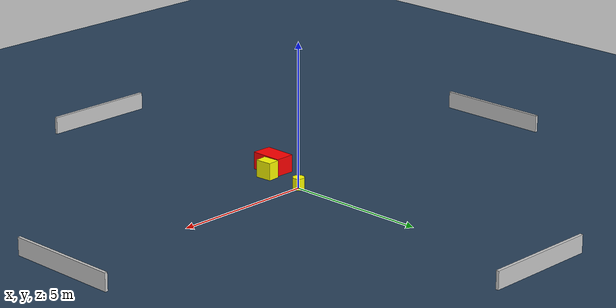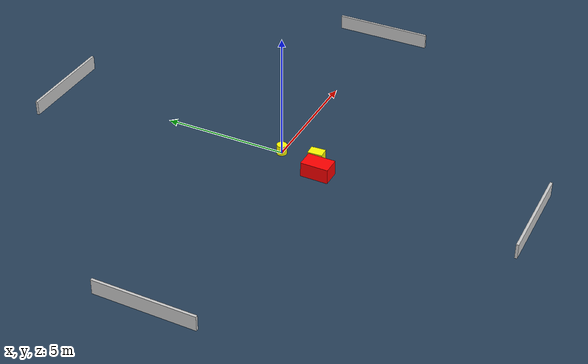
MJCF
<?xml version="1.0" ?>
<mujoco model="generated_environment">
  <option timestep="0.01" integrator="RK4" cone="elliptic"/>
  <default>
    <geom density="1"/>
  </default>
  <asset>
    <texture builtin="gradient" height="3072" name="skybox" rgb1="0.3 0.5 0.7" rgb2="0 0 0" type="skybox" width="512"/>
    <texture builtin="checker" height="300" name="groundplane" rgb1="0.2 0.3 0.4" rgb2="0.1 0.2 0.3" type="2d" width="300"/>
    <material name="groundplane" reflectance="0.2" texrepeat="5 5" texture="groundplane"/>
  </asset>
  <worldbody>
    <light dir="0 0 -1" directional="true" pos="0 0 1.5"/>
    <geom condim="3" friction="0.5 0.005 0.001" material="groundplane" name="floor" pos="0 0 0" size="0 0 0.05" type="plane"/>
    <body name="walls">
      <geom name="wall_1" condim="4" pos="-10.0 0.0 0.3" rgba="0.800000011920929 0.800000011920929 0.800000011920929 1.0" size="0.05 2.0 0.3" type="box"/>
      <geom name="wall_2" condim="4" pos="10.0 0.0 0.3" rgba="0.800000011920929 0.800000011920929 0.800000011920929 1.0" size="0.05 2.0 0.3" type="box"/>
      <geom name="wall_3" condim="4" pos="0.0 -10.0 0.3" rgba="0.800000011920929 0.800000011920929 0.800000011920929 1.0" size="2.0 0.05 0.3" type="box"/>
      <geom name="wall_4" condim="4" pos="0.0 10.0 0.3" rgba="0.800000011920929 0.800000011920929 0.800000011920929 1.0" size="2.0 0.05 0.3" type="box"/>
    </body>
    <body name="robot">
      <joint name="joint_x" type="slide" pos="0 0 0" axis="1 0 0"/>
      <joint name="joint_y" type="slide" pos="0 0 0" axis="0 1 0"/>
      <geom name="robot" type="cylinder" pos="0.0 0.0 0.2" size="0.2 0.2 0.0" mass="5.0" friction="1.0 0.005 0.0001" condim="4" rgba="1.0 1.0 0.0 1.0"/>
    </body>
    <body name="obstacle_1_movable">
      <geom name="obstacle_1_movable" condim="4" pos="-0.05370547077309323 -1.5007358399376762 0.3" euler="0 0 183.54250926334348" friction="0.0 0.005 0.001" rgba="1.0 1.0 0.0 1.0" size="0.20855545643853168 0.29042468151410317 0.3" type="box" mass="0.1"/>
      <joint type="free"/>
    </body>
    <body name="obstacle_2_static">
      <geom name="obstacle_2_static" condim="4" pos="-0.6714684406367862 -1.8436174122613336 0.3" euler="0 0 179.64165947540897" friction="0.0 0.005 0.001" rgba="1.0 0.0 0.0 1.0" size="0.3477333234857142 0.5556457095350784 0.3" type="box"/>
    </body>
  </worldbody>
  <actuator>
    <motor name="actuator_x" joint="joint_x" gear="1" ctrlrange="-1 1"/>
    <motor name="actuator_y" joint="joint_y" gear="1" ctrlrange="-1 1"/>
  </actuator>
</mujoco>
